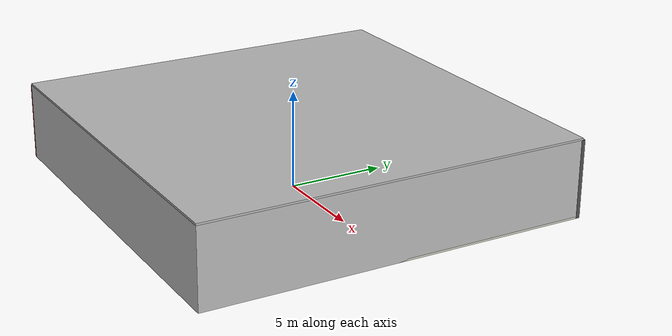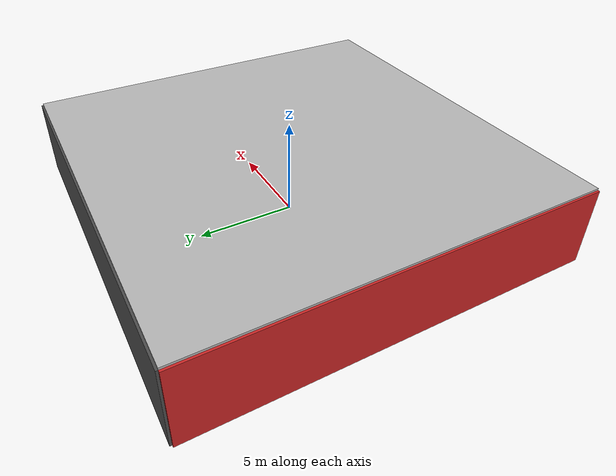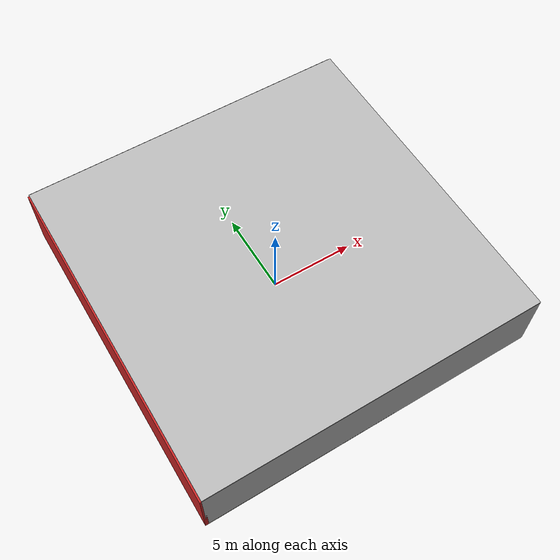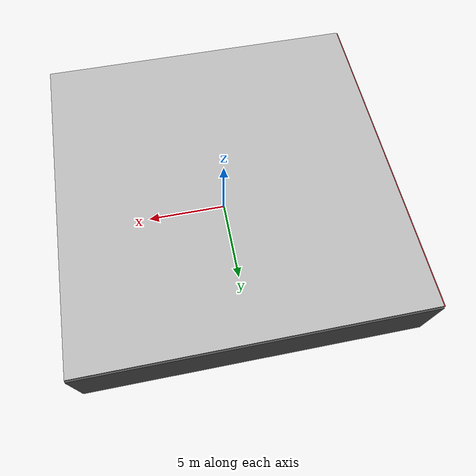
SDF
<sdf version="1.4">
 <world name="default">
  <physics type="ode">
   <max_step_size>0.001</max_step_size>
   <real_time_factor>1</real_time_factor>
   <real_time_update_rate>1000</real_time_update_rate>
   <gravity>0 0 -9.8</gravity>
  </physics>
  <scene><ambient>0.4 0.4 0.4 1</ambient><background>0.7 0.7 0.7 1</background><shadows>1</shadows></scene>
  <model name="Surrounding">
   <static>1</static>
   <link name="Ceiling">
    <collision name="Ceiling_Collision"><geometry><box><size>20 20 0.1</size></box></geometry></collision>
    <visual name="Ceiling_Visual">
     <geometry><box><size>20 20 0.1</size></box></geometry>
     <material>
      <script><uri>file://media/materials/scripts/gazebo.material</uri><name>Gazebo/JointAnchor</name></script>
     </material>
    </visual>
    <pose>0 0 4.05 0 0 0</pose>
   </link>
   <link name="Wall_South">
    <collision name="Wall_South_Collision">
     <geometry><box><size>20 0 4</size></box></geometry>
     <pose>0 0 2 0 -0 0</pose>
    </collision>
    <visual name="Wall_South_Visual">
     <pose>0 0 2 0 -0 0</pose>
     <geometry><box><size>20 0 4</size></box></geometry>
     <material>
      <script><uri>file://media/materials/scripts/gazebo.material</uri><name>Gazebo/CloudySky</name></script>
     </material>
    </visual>
    <velocity_decay><linear>0</linear><angular>0</angular></velocity_decay>
    <pose>0 -10 0 0 -0 0</pose>
   </link>
   <link name="Wall_East">
    <collision name="Wall_21_Collision">
     <geometry><box><size>20 0 4</size></box></geometry>
     <pose>0 0 2 0 -0 0</pose>
    </collision>
    <visual name="Wall_21_Visual">
     <pose>0 0 2 0 -0 0</pose>
     <geometry><box><size>20 0 4</size></box></geometry>
     <material>
      <script><uri>file://media/materials/scripts/gazebo.material</uri><name>Gazebo/LightOff</name></script>
     </material>
    </visual>
    <velocity_decay><linear>0</linear><angular>0</angular></velocity_decay>
    <pose>10 0 0 0 -0 1.5708</pose>
   </link>
   <link name="Wall_North">
    <collision name="Wall_22_Collision">
     <geometry><box><size>20 0.2 4</size></box></geometry>
     <pose>0 0 2 0 -0 0</pose>
    </collision>
    <visual name="Wall_22_Visual">
     <pose>0 0 2 0 -0 0</pose>
     <geometry><box><size>20 0.2 4</size></box></geometry>
     <material>
      <script><uri>file://media/materials/scripts/gazebo.material</uri><name>Gazebo/Road</name></script>
     </material>
    </visual>
    <velocity_decay><linear>0</linear><angular>0</angular></velocity_decay>
    <pose>0 10 0 0 -0 0</pose>
   </link>
   <link name="Wall_West">
    <collision name="Wall_23_Collision">
     <geometry><box><size>20 0.2 4</size></box></geometry>
     <pose>0 0 2 0 -0 0</pose>
    </collision>
    <visual name="Wall_23_Visual">
     <pose>0 0 2 0 -0 0</pose>
     <geometry><box><size>20 0.2 4</size></box></geometry>
     <material>
      <script><uri>file://media/materials/scripts/gazebo.material</uri><name>Gazebo/RedGlow</name></script>
     </material>
    </visual>
    <velocity_decay><linear>0</linear><angular>0</angular></velocity_decay>
    <pose>-10 0 0 0 0 -1.5708</pose>
   </link>
   <link name="Ground_link">
    <collision name="collision">
     <pose>0 0 .05 0 -0 0</pose>
     <geometry><box><size>20 20 0.1</size></box></geometry>
    </collision>
    <visual name="visual">
     <pose>0 0 .05 0 -0 0</pose>
     <geometry><box><size>20 20 0.1</size></box></geometry>
     <material>
      <script><uri>file://media/materials/scripts/gazebo.material</uri><name>Gazebo/PaintedWall</name></script>
     </material>
    </visual>
   </link>
   <static>1</static>
  </model>
  <spherical_coordinates>
   <surface_model>EARTH_WGS84</surface_model>
   <latitude_deg>0</latitude_deg>
   <longitude_deg>0</longitude_deg>
   <elevation>0</elevation>
   <heading_deg>0</heading_deg>
  </spherical_coordinates>
  <light name="lightball_0" type="diffuse">
   <diffuse>0.8 0.8 0.8 1</diffuse>
   <specular>0.2 0.2 0.2 1</specular>
   <attenuation>
    <range>100</range>
    <constant>0.7</constant>
    <linear>0.01</linear>
    <quadratic>0.001</quadratic>
   </attenuation>
   <direction>-0.5 0.1 -0.9</direction>
   <pose>-4.39531277682 -1.02816466381 3.64067910519 0 0 0</pose>
  </light>
  <light name="lightball_1" type="diffuse">
   <diffuse>0.8 0.8 0.8 1</diffuse>
   <specular>0.2 0.2 0.2 1</specular>
   <attenuation>
    <range>100</range>
    <constant>0.7</constant>
    <linear>0.01</linear>
    <quadratic>0.001</quadratic>
   </attenuation>
   <direction>-0.5 0.1 -0.9</direction>
   <pose>8.8516011781 -6.50237246715 2.56897547165 0 0 0</pose>
  </light>
  <light name="lightball_2" type="diffuse">
   <diffuse>0.8 0.8 0.8 1</diffuse>
   <specular>0.2 0.2 0.2 1</specular>
   <attenuation>
    <range>100</range>
    <constant>0.7</constant>
    <linear>0.01</linear>
    <quadratic>0.001</quadratic>
   </attenuation>
   <direction>-0.5 0.1 -0.9</direction>
   <pose>-7.34374959204 0.678196827492 1.42619992305 0 0 0</pose>
  </light>
  <light name="lightball_3" type="diffuse">
   <diffuse>0.8 0.8 0.8 1</diffuse>
   <specular>0.2 0.2 0.2 1</specular>
   <attenuation>
    <range>100</range>
    <constant>0.7</constant>
    <linear>0.01</linear>
    <quadratic>0.001</quadratic>
   </attenuation>
   <direction>-0.5 0.1 -0.9</direction>
   <pose>3.11429784059 5.84902121977 2.83968831562 0 0 0</pose>
  </light>
  <light name="lightball_4" type="diffuse">
   <diffuse>0.8 0.8 0.8 1</diffuse>
   <specular>0.2 0.2 0.2 1</specular>
   <attenuation>
    <range>100</range>
    <constant>0.7</constant>
    <linear>0.01</linear>
    <quadratic>0.001</quadratic>
   </attenuation>
   <direction>-0.5 0.1 -0.9</direction>
   <pose>7.14719435457 -8.58121149 3.64026860846 0 0 0</pose>
  </light>
  <include><uri>model://table</uri><pose>-5.12048865537 -1.38068300315 0 0 0 1.31893476249</pose></include>
  <include><uri>model://cabinet</uri><pose>-1.56263859208 1.84870295903 0 0 0 0.720006289068</pose></include>
  <include>
   <uri>model://construction_cone</uri>
   <pose>-1.71834268581 7.18500421233 0 0 0 0.276158561893</pose>
  </include>
  <include><uri>model://table</uri><pose>2.09982545544 -1.27764608961 0 0 0 1.44544157051</pose></include>
  <include>
   <uri>model://robocup_3Dsim_goal</uri>
   <pose>7.38098747572 4.88381833642 0 0 0 2.74230883379</pose>
  </include>
 </world>
</sdf>

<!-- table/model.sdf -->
<sdf version="1.5">
  <model name="table">
    <static>true</static>
    <link name="link">
      <collision name="surface">
        <pose>0 0 1.0 0 0 0</pose>
        <geometry>
          <box>
            <size>1.5 0.8 0.03</size>
          </box>
        </geometry>
        <surface>
          <friction>
            <ode>
              <mu>0.6</mu>
              <mu2>0.6</mu2>
            </ode>
          </friction>
        </surface>
      </collision>
      <visual name="visual1">
        <pose>0 0 1.0 0 0 0</pose>
        <geometry>
          <box>
            <size>1.5 0.8 0.03</size>
          </box>
        </geometry>
        <material>
          <script>
            <uri>model://media/materials/scripts/gazebo.material</uri>
            <name>Gazebo/Wood</name>
          </script>
        </material>
      </visual>
      <collision name="front_left_leg">
        <pose>0.68 0.38 0.5 0 0 0</pose>
        <geometry>
          <cylinder>
            <radius>0.02</radius>
            <length>1.0</length>
          </cylinder>
        </geometry>
      </collision>
      <visual name="front_left_leg">
        <pose>0.68 0.38 0.5 0 0 0</pose>
        <geometry>
          <cylinder>
            <radius>0.02</radius>
            <length>1.0</length>
          </cylinder>
        </geometry>
        <material>
          <script>
            <uri>model://media/materials/scripts/gazebo.material</uri>
            <name>Gazebo/Grey</name>
          </script>
        </material>
      </visual>
      <collision name="front_right_leg">
        <pose>0.68 -0.38 0.5 0 0 0</pose>
        <geometry>
          <cylinder>
            <radius>0.02</radius>
            <length>1.0</length>
          </cylinder>
        </geometry>
      </collision>
      <visual name="front_right_leg">
        <pose>0.68 -0.38 0.5 0 0 0</pose>
        <geometry>
          <cylinder>
            <radius>0.02</radius>
            <length>1.0</length>
          </cylinder>
        </geometry>
        <material>
          <script>
            <uri>model://media/materials/scripts/gazebo.material</uri>
            <name>Gazebo/Grey</name>
          </script>
        </material>
      </visual>
      <collision name="back_right_leg">
        <pose>-0.68 -0.38 0.5 0 0 0</pose>
        <geometry>
          <cylinder>
            <radius>0.02</radius>
            <length>1.0</length>
          </cylinder>
        </geometry>
      </collision>
      <visual name="back_right_leg">
        <pose>-0.68 -0.38 0.5 0 0 0</pose>
        <geometry>
          <cylinder>
            <radius>0.02</radius>
            <length>1.0</length>
          </cylinder>
        </geometry>
        <material>
          <script>
            <uri>model://media/materials/scripts/gazebo.material</uri>
            <name>Gazebo/Grey</name>
          </script>
        </material>
      </visual>
      <collision name="back_left_leg">
        <pose>-0.68 0.38 0.5 0 0 0</pose>
        <geometry>
          <cylinder>
            <radius>0.02</radius>
            <length>1.0</length>
          </cylinder>
        </geometry>
      </collision>
      <visual name="back_left_leg">
        <pose>-0.68 0.38 0.5 0 0 0</pose>
        <geometry>
          <cylinder>
            <radius>0.02</radius>
            <length>1.0</length>
          </cylinder>
        </geometry>
        <material>
          <script>
            <uri>model://media/materials/scripts/gazebo.material</uri>
            <name>Gazebo/Grey</name>
          </script>
        </material>
      </visual>
    </link>
  </model>
</sdf>

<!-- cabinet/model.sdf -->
<sdf version="1.5">
  <model name="cabinet">
    <static>true</static>
    <link name="cabinet_bottom_plate">
      <inertial>
        <pose>0 0 -1 0 0 0</pose>
        <inertia>
          <ixx>2.050000</ixx>
          <ixy>0</ixy>
          <ixz>0</ixz>
          <iyy>2.050000</iyy>
          <iyz>0</iyz>
          <izz>2.050000</izz>
        </inertia>
        <mass>25.000000</mass>
      </inertial>
      <collision name="cabinet_bottom_plate_geom">
        <pose>0 0 0.010000 0 0 0</pose>
        <geometry>
          <box>
            <size>0.450000 0.450000 0.020000</size>
          </box>
        </geometry>
      </collision>
      <visual name="cabinet_bottom_plate_geom_visual">
        <pose>0 0 0.010000 0 0 0</pose>
        <geometry>
          <box>
            <size>0.450000 0.450000 0.020000</size>
          </box>
        </geometry>
        <material>
          <script>
            <uri>model://media/materials/scripts/gazebo.material</uri>
            <name>Gazebo/Wood</name>
          </script>
        </material>
      </visual>
      <collision name="cabinet_bottom_plate_geom_cabinet_back_plate">
        <pose>0.235000 0 0.510000 0 0 0</pose>
        <geometry>
          <box>
            <size>0.020000 0.450000 1.020000</size>
          </box>
        </geometry>
      </collision>
      <visual name="cabinet_bottom_plate_geom_cabinet_back_plate_visual">
        <pose>0.235000 0 0.510000 0 0 0</pose>
        <geometry>
          <box>
            <size>0.020000 0.450000 1.020000</size>
          </box>
        </geometry>
        <material>
          <script>
            <uri>model://media/materials/scripts/gazebo.material</uri>
            <name>Gazebo/Wood</name>
          </script>
        </material>
      </visual>
      <collision name="cabinet_bottom_plate_geom_cabinet_left_plate">
        <pose>0 0.235000 0.510000 0 0 0</pose>
        <geometry>
          <box>
            <size>0.450000 0.020000 1.020000</size>
          </box>
        </geometry>
      </collision>
      <visual name="cabinet_bottom_plate_geom_cabinet_left_plate_visual">
        <pose>0 0.235000 0.510000 0 0 0</pose>
        <geometry>
          <box>
            <size>0.450000 0.020000 1.020000</size>
          </box>
        </geometry>
        <material>
          <script>
            <uri>model://media/materials/scripts/gazebo.material</uri>
            <name>Gazebo/Wood</name>
          </script>
        </material>
      </visual>
      <collision name="cabinet_bottom_plate_geom_cabinet_middle_plate">
        <pose>0 0 0.510000 0 0 0</pose>
        <geometry>
          <box>
            <size>0.450000 0.450000 0.020000</size>
          </box>
        </geometry>
      </collision>
      <visual name="cabinet_bottom_plate_geom_cabinet_middle_plate_visual">
        <pose>0 0 0.510000 0 0 0</pose>
        <geometry>
          <box>
            <size>0.450000 0.450000 0.020000</size>
          </box>
        </geometry>
        <material>
          <script>
            <uri>model://media/materials/scripts/gazebo.material</uri>
            <name>Gazebo/Wood</name>
          </script>
        </material>
      </visual>
      <collision name="cabinet_bottom_plate_geom_cabinet_right_plate">
        <pose>0 -0.235000 0.510000 0 0 0</pose>
        <geometry>
          <box>
            <size>0.450000 0.020000 1.020000</size>
          </box>
        </geometry>
      </collision>
      <visual name="cabinet_bottom_plate_geom_cabinet_right_plate_visual">
        <pose>0 -0.235000 0.510000 0 0 0</pose>
        <geometry>
          <box>
            <size>0.450000 0.020000 1.020000</size>
          </box>
        </geometry>
        <material>
          <script>
            <uri>model://media/materials/scripts/gazebo.material</uri>
            <name>Gazebo/Wood</name>
          </script>
        </material>
      </visual>
      <collision name="cabinet_bottom_plate_geom_cabinet_top_plate">
        <pose>0 0 1.010000 0 0 0</pose>
        <geometry>
          <box>
            <size>0.450000 0.450000 0.020000</size>
          </box>
        </geometry>
      </collision>
      <visual name="cabinet_bottom_plate_geom_cabinet_top_plate_visual">
        <pose>0 0 1.010000 0 0 0</pose>
        <geometry>
          <box>
            <size>0.450000 0.450000 0.020000</size>
          </box>
        </geometry>
        <material>
          <script>
            <uri>model://media/materials/scripts/gazebo.material</uri>
            <name>Gazebo/Wood</name>
          </script>
        </material>
      </visual>
    </link>
  </model>
</sdf>

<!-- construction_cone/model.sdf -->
<sdf version="1.5">
  <model name="Construction Cone">
    <link name="link">
      <collision name="collision">
        <geometry>
          <mesh>
            <scale>10 10 10</scale>
            <uri>file://isr-testbed/construction_cone/meshes/construction_cone.dae</uri>
          </mesh>
        </geometry>
      </collision>
      <visual name="visual">
        <geometry>
          <mesh>
            <scale>10 10 10</scale>
            <uri>file://isr-testbed/construction_cone/meshes/construction_cone.dae</uri>
          </mesh>
        </geometry>
      </visual>
    </link>
  </model>
</sdf>

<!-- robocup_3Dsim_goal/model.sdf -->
<sdf version="1.5">
  <model name="robocup_3d_goal">
    <static>true</static>
    <link name="left_post">
      <pose>0 1.05 0.45 0 0 0</pose>
      <collision name="collision">
        <geometry>
          <cylinder>
            <radius>0.05</radius>
            <length>0.9</length>
          </cylinder>
        </geometry>
      </collision>
      <visual name="visual">
        <geometry>
          <cylinder>
            <radius>0.05</radius>
            <length>0.9</length>
          </cylinder>
        </geometry>
        <material>
          <script>
            <uri>file://media/materials/scripts/gazebo.material</uri>
            <name>Gazebo/ZincYellow</name>
          </script>
        </material>
      </visual>
    </link>
    <link name="left_support_horiz_lower">
      <pose>0.30 1.05 0.01 0 0 0</pose>
      <collision name="collision">
        <geometry>
          <box>
            <size>0.50 0.02 0.02</size>
          </box>
        </geometry>
      </collision>
      <visual name="visual">
        <geometry>
          <box>
            <size>0.50 0.02 0.02</size>
          </box>
        </geometry>
        <material>
          <script>
            <uri>file://media/materials/scripts/gazebo.material</uri>
            <name>Gazebo/White</name>
          </script>
        </material>
      </visual>
    </link>
    <link name="left_support_horiz_upper">
      <pose>0.30 1.05 0.79 0 0 0</pose>
      <collision name="collision">
        <geometry>
          <box>
            <size>0.50 0.02 0.02</size>
          </box>
        </geometry>
      </collision>
      <visual name="visual">
        <geometry>
          <box>
            <size>0.50 0.02 0.02</size>
          </box>
        </geometry>
        <material>
          <script>
            <uri>file://media/materials/scripts/gazebo.material</uri>
            <name>Gazebo/White</name>
          </script>
        </material>
      </visual>
    </link>
    <link name="left_support_vertical">
      <pose>0.56 1.05 0.4 0 1.5708 0</pose>
      <collision name="collision">
        <geometry>
          <box>
            <size>0.80 0.02 0.02</size>
          </box>
        </geometry>
      </collision>
      <visual name="visual">
        <geometry>
          <box>
            <size>0.80 0.02 0.02</size>
          </box>
        </geometry>
        <material>
          <script>
            <uri>file://media/materials/scripts/gazebo.material</uri>
            <name>Gazebo/White</name>
          </script>
        </material>
      </visual>
    </link>
    <link name="right_support_horiz_lower">
      <pose>0.30 -1.05 0.01 0 0 0</pose>
      <collision name="collision">
        <geometry>
          <box>
            <size>0.50 0.02 0.02</size>
          </box>
        </geometry>
      </collision>
      <visual name="visual">
        <geometry>
          <box>
            <size>0.50 0.02 0.02</size>
          </box>
        </geometry>
        <material>
          <script>
            <uri>file://media/materials/scripts/gazebo.material</uri>
            <name>Gazebo/White</name>
          </script>
        </material>
      </visual>
    </link>
    <link name="right_support_horiz_upper">
      <pose>0.30 -1.05 0.79 0 0 0</pose>
      <collision name="collision">
        <geometry>
          <box>
            <size>0.50 0.02 0.02</size>
          </box>
        </geometry>
      </collision>
      <visual name="visual">
        <geometry>
          <box>
            <size>0.50 0.02 0.02</size>
          </box>
        </geometry>
        <material>
          <script>
            <uri>file://media/materials/scripts/gazebo.material</uri>
            <name>Gazebo/White</name>
          </script>
        </material>
      </visual>
    </link>
    <link name="right_support_vertical">
      <pose>0.56 -1.05 0.4 0 1.5708 0</pose>
      <collision name="collision">
        <geometry>
          <box>
            <size>0.80 0.02 0.02</size>
          </box>
        </geometry>
      </collision>
      <visual name="visual">
        <geometry>
          <box>
            <size>0.80 0.02 0.02</size>
          </box>
        </geometry>
        <material>
          <script>
            <uri>file://media/materials/scripts/gazebo.material</uri>
            <name>Gazebo/White</name>
          </script>
        </material>
      </visual>
    </link>
    <link name="center_support_horiz_lower">
      <pose>0.56 0 0.01 0 1.5708 0</pose>
      <collision name="collision">
        <geometry>
          <box>
            <size>0.02 2.08 0.02</size>
          </box>
        </geometry>
      </collision>
      <visual name="visual">
        <geometry>
          <box>
            <size>0.02 2.08 0.02</size>
          </box>
        </geometry>
        <material>
          <script>
            <uri>file://media/materials/scripts/gazebo.material</uri>
            <name>Gazebo/White</name>
          </script>
        </material>
      </visual>
    </link>
    <link name="center_support_horiz_upper">
      <pose>0.56 0 0.79 0 1.5708 0</pose>
      <collision name="collision">
        <geometry>
          <box>
            <size>0.02 2.08 0.02</size>
          </box>
        </geometry>
      </collision>
      <visual name="visual">
        <geometry>
          <box>
            <size>0.02 2.08 0.02</size>
          </box>
        </geometry>
        <material>
          <script>
            <uri>file://media/materials/scripts/gazebo.material</uri>
            <name>Gazebo/White</name>
          </script>
        </material>
      </visual>
    </link>
    <link name="right_post">
      <pose>0 -1.05 0.45 0 0 0</pose>
      <collision name="collision">
        <geometry>
          <cylinder>
            <radius>0.05</radius>
            <length>0.9</length>
          </cylinder>
        </geometry>
      </collision>
      <visual name="visual">
        <geometry>
          <cylinder>
            <radius>0.05</radius>
            <length>0.9</length>
          </cylinder>
        </geometry>
        <material>
          <script>
            <uri>file://media/materials/scripts/gazebo.material</uri>
            <name>Gazebo/ZincYellow</name>
          </script>
        </material>
      </visual>
    </link>
    <link name="crossbar">
      <pose>0 0 0.85 1.57 1.57 0</pose>
      <collision name="collision">
        <geometry>
          <cylinder>
            <radius>0.05</radius>
            <length>2.0</length>
          </cylinder>
        </geometry>
      </collision>
      <visual name="visual">
        <geometry>
          <cylinder>
            <radius>0.05</radius>
            <length>2.0</length>
          </cylinder>
        </geometry>
        <material>
          <script>
            <uri>file://media/materials/scripts/gazebo.material</uri>
            <name>Gazebo/ZincYellow</name>
          </script>
        </material>
      </visual>
    </link>
    <link name="center_net">
      <pose>0.56 0 0.40 0 0 0</pose>
      <collision name="collision">
        <geometry>
          <box>
            <size>0.01 2.1 0.80</size>
          </box>
        </geometry>
      </collision>
      <visual name="visual">
        <geometry>
          <box>
            <size>0.01 2.1 0.80</size>
          </box>
        </geometry>
        <material>
          <script>
            <uri>model://../model_source/models/robocup09_spl_field/materials/scripts/</uri>
            <uri>model://../model_source/models/robocup09_spl_field/materials/textures/</uri>
            <name>RoboCup/Net</name>
          </script>
        </material>
      </visual>
    </link>
    <link name="left_net">
      <pose>0.30 1.05 0.40 0 0 0</pose>
      <collision name="collision">
        <geometry>
          <box>
            <size>0.50 0.01 0.76</size>
          </box>
        </geometry>
      </collision>
      <visual name="visual">
        <geometry>
          <box>
            <size>0.50 0.01 0.76</size>
          </box>
        </geometry>
        <material>
          <script>
            <uri>model://../model_source/models/robocup09_spl_field/materials/scripts/</uri>
            <uri>model://../model_source/models/robocup09_spl_field/materials/textures/</uri>
            <name>RoboCup/Net</name>
          </script>
        </material>
      </visual>
    </link>
    <link name="right_net">
      <pose>0.30 -1.05 0.40 0 0 0</pose>
      <collision name="collision">
        <geometry>
          <box>
            <size>0.50 0.01 0.76</size>
          </box>
        </geometry>
      </collision>
      <visual name="visual">
        <geometry>
          <box>
            <size>0.50 0.01 0.76</size>
          </box>
        </geometry>
        <material>
          <script>
            <uri>model://../model_source/models/robocup09_spl_field/materials/scripts/</uri>
            <uri>model://../model_source/models/robocup09_spl_field/materials/textures/</uri>
            <name>RoboCup/Net</name>
          </script>
        </material>
      </visual>
    </link>
  </model>
</sdf>
